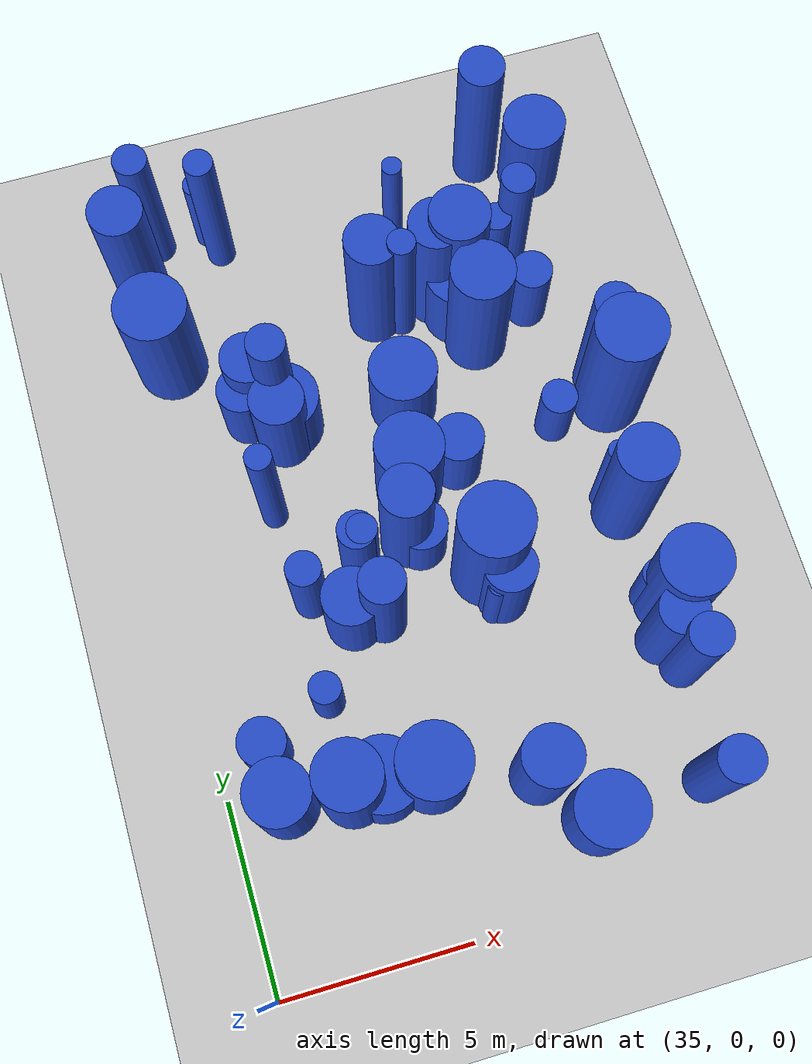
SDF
<sdf version="1.6">
 <world name="default">
  <model name="ground_plane">
   <static>1</static>
   <link name="link">
    <collision name="collision">
     <geometry><plane><normal>0 0 1</normal><size>100 100</size></plane></geometry>
     <surface><friction><ode><mu>100</mu><mu2>50</mu2></ode></friction></surface>
    </collision>
    <visual name="visual">
     <cast_shadows>0</cast_shadows>
     <geometry><plane><normal>0 0 1</normal><size>100 100</size></plane></geometry>
     <material>
      <script><uri>file://media/materials/scripts/gazebo.material</uri><name>Gazebo/Grey</name></script>
     </material>
    </visual>
   </link>
  </model>
  <model name="10">
   <static>0</static>
   <link name="link">
    <inertial>
     <mass>2</mass>
     <inertia><ixx>3.95554</ixx><ixy>0</ixy><ixz>0</ixz><iyy>3.95554</iyy><iyz>0</iyz><izz>0.519828</izz></inertia>
    </inertial>
    <collision name="collision">
     <geometry><cylinder><length>4.7089</length><radius>0.720991</radius></cylinder></geometry>
     <surface><contact><collide_without_contact>1</collide_without_contact></contact></surface>
    </collision>
    <visual name="visual">
     <geometry><cylinder><length>4.7089</length><radius>0.720991</radius></cylinder></geometry>
     <material>
      <script><uri>file://media/materials/scripts/gazebo.material</uri><name>Gazebo/Blue</name></script>
     </material>
    </visual>
    <gravity>0</gravity>
   </link>
   <pose>42.2217 16.8427 2.35445 0 -0 0</pose>
  </model>
  <model name="18">
   <static>0</static>
   <link name="link">
    <inertial>
     <mass>2</mass>
     <inertia><ixx>4.07132</ixx><ixy>0</ixy><ixz>0</ixz><iyy>4.07132</iyy><iyz>0</iyz><izz>0.25791</izz></inertia>
    </inertial>
    <collision name="collision">
     <geometry><cylinder><length>4.86356</length><radius>0.507848</radius></cylinder></geometry>
     <surface><contact><collide_without_contact>1</collide_without_contact></contact></surface>
    </collision>
    <visual name="visual">
     <geometry><cylinder><length>4.86356</length><radius>0.507848</radius></cylinder></geometry>
     <material>
      <script><uri>file://media/materials/scripts/gazebo.material</uri><name>Gazebo/Blue</name></script>
     </material>
    </visual>
    <gravity>0</gravity>
   </link>
   <pose>38.9741 14.813 2.43178 0 -0 0</pose>
  </model>
  <model name="20">
   <static>0</static>
   <link name="link">
    <inertial>
     <mass>2</mass>
     <inertia><ixx>4.13593</ixx><ixy>0</ixy><ixz>0</ixz><iyy>4.13593</iyy><iyz>0</iyz><izz>0.377057</izz></inertia>
    </inertial>
    <collision name="collision">
     <geometry><cylinder><length>4.86666</length><radius>0.614049</radius></cylinder></geometry>
     <surface><contact><collide_without_contact>1</collide_without_contact></contact></surface>
    </collision>
    <visual name="visual">
     <geometry><cylinder><length>4.86666</length><radius>0.614049</radius></cylinder></geometry>
     <material>
      <script><uri>file://media/materials/scripts/gazebo.material</uri><name>Gazebo/Blue</name></script>
     </material>
    </visual>
    <gravity>0</gravity>
   </link>
   <pose>46.3124 20.7601 2.43333 0 -0 0</pose>
  </model>
  <model name="54">
   <static>0</static>
   <link name="link">
    <inertial>
     <mass>2</mass>
     <inertia><ixx>3.78955</ixx><ixy>0</ixy><ixz>0</ixz><iyy>3.78955</iyy><iyz>0</iyz><izz>0.716468</izz></inertia>
    </inertial>
    <collision name="collision">
     <geometry><cylinder><length>4.53739</length><radius>0.846444</radius></cylinder></geometry>
     <surface><contact><collide_without_contact>1</collide_without_contact></contact></surface>
    </collision>
    <visual name="visual">
     <geometry><cylinder><length>4.53739</length><radius>0.846444</radius></cylinder></geometry>
     <material>
      <script><uri>file://media/materials/scripts/gazebo.material</uri><name>Gazebo/Blue</name></script>
     </material>
    </visual>
    <gravity>0</gravity>
   </link>
   <pose>38.1122 4.28516 2.26869 0 -0 0</pose>
  </model>
  <model name="68">
   <static>0</static>
   <link name="link">
    <inertial>
     <mass>2</mass>
     <inertia><ixx>3.67869</ixx><ixy>0</ixy><ixz>0</ixz><iyy>3.67869</iyy><iyz>0</iyz><izz>0.545919</izz></inertia>
    </inertial>
    <collision name="collision">
     <geometry><cylinder><length>4.52044</length><radius>0.738864</radius></cylinder></geometry>
     <surface><contact><collide_without_contact>1</collide_without_contact></contact></surface>
    </collision>
    <visual name="visual">
     <geometry><cylinder><length>4.52044</length><radius>0.738864</radius></cylinder></geometry>
     <material>
      <script><uri>file://media/materials/scripts/gazebo.material</uri><name>Gazebo/Blue</name></script>
     </material>
    </visual>
    <gravity>0</gravity>
   </link>
   <pose>43.9539 16.9312 2.26022 0 -0 0</pose>
  </model>
  <model name="72">
   <static>0</static>
   <link name="link">
    <inertial>
     <mass>2</mass>
     <inertia>
      <ixx>4.09435</ixx>
      <ixy>0</ixy>
      <ixz>0</ixz>
      <iyy>4.09435</iyy>
      <iyz>0</iyz>
      <izz>0.0686936</izz>
     </inertia>
    </inertial>
    <collision name="collision">
     <geometry><cylinder><length>4.93559</length><radius>0.262095</radius></cylinder></geometry>
     <surface><contact><collide_without_contact>1</collide_without_contact></contact></surface>
    </collision>
    <visual name="visual">
     <geometry><cylinder><length>4.93559</length><radius>0.262095</radius></cylinder></geometry>
     <material>
      <script><uri>file://media/materials/scripts/gazebo.material</uri><name>Gazebo/Blue</name></script>
     </material>
    </visual>
    <gravity>0</gravity>
   </link>
   <pose>43.2507 18.5685 2.46779 0 -0 0</pose>
  </model>
  <model name="74">
   <static>0</static>
   <link name="link">
    <inertial>
     <mass>2</mass>
     <inertia><ixx>4.55226</ixx><ixy>0</ixy><ixz>0</ixz><iyy>4.55226</iyy><iyz>0</iyz><izz>0.905784</izz></inertia>
    </inertial>
    <collision name="collision">
     <geometry><cylinder><length>4.95946</length><radius>0.951727</radius></cylinder></geometry>
     <surface><contact><collide_without_contact>1</collide_without_contact></contact></surface>
    </collision>
    <visual name="visual">
     <geometry><cylinder><length>4.95946</length><radius>0.951727</radius></cylinder></geometry>
     <material>
      <script><uri>file://media/materials/scripts/gazebo.material</uri><name>Gazebo/Blue</name></script>
     </material>
    </visual>
    <gravity>0</gravity>
   </link>
   <pose>43.0457 8.93679 2.47973 0 -0 0</pose>
  </model>
  <model name="75">
   <static>0</static>
   <link name="link">
    <inertial>
     <mass>2</mass>
     <inertia><ixx>0.9445</ixx><ixy>0</ixy><ixz>0</ixz><iyy>0.9445</iyy><iyz>0</iyz><izz>0.472755</izz></inertia>
    </inertial>
    <collision name="collision">
     <geometry><cylinder><length>2.06125</length><radius>0.687572</radius></cylinder></geometry>
     <surface><contact><collide_without_contact>1</collide_without_contact></contact></surface>
    </collision>
    <visual name="visual">
     <geometry><cylinder><length>2.06125</length><radius>0.687572</radius></cylinder></geometry>
     <material>
      <script><uri>file://media/materials/scripts/gazebo.material</uri><name>Gazebo/Blue</name></script>
     </material>
    </visual>
    <gravity>0</gravity>
   </link>
   <pose>41.5858 10.1246 1.03062 0 -0 0</pose>
  </model>
  <model name="80">
   <static>0</static>
   <link name="link">
    <inertial>
     <mass>2</mass>
     <inertia><ixx>1.55271</ixx><ixy>0</ixy><ixz>0</ixz><iyy>1.55271</iyy><iyz>0</iyz><izz>0.739705</izz></inertia>
    </inertial>
    <collision name="collision">
     <geometry><cylinder><length>2.66405</length><radius>0.860061</radius></cylinder></geometry>
     <surface><contact><collide_without_contact>1</collide_without_contact></contact></surface>
    </collision>
    <visual name="visual">
     <geometry><cylinder><length>2.66405</length><radius>0.860061</radius></cylinder></geometry>
     <material>
      <script><uri>file://media/materials/scripts/gazebo.material</uri><name>Gazebo/Blue</name></script>
     </material>
    </visual>
    <gravity>0</gravity>
   </link>
   <pose>47.7162 20.0833 1.33202 0 -0 0</pose>
  </model>
  <model name="93">
   <static>0</static>
   <link name="link">
    <inertial>
     <mass>2</mass>
     <inertia><ixx>1.83775</ixx><ixy>0</ixy><ixz>0</ixz><iyy>1.83775</iyy><iyz>0</iyz><izz>0.573765</izz></inertia>
    </inertial>
    <collision name="collision">
     <geometry><cylinder><length>3.05045</length><radius>0.757473</radius></cylinder></geometry>
     <surface><contact><collide_without_contact>1</collide_without_contact></contact></surface>
    </collision>
    <visual name="visual">
     <geometry><cylinder><length>3.05045</length><radius>0.757473</radius></cylinder></geometry>
     <material>
      <script><uri>file://media/materials/scripts/gazebo.material</uri><name>Gazebo/Blue</name></script>
     </material>
    </visual>
    <gravity>0</gravity>
   </link>
   <pose>39.3373 8.57951 1.52522 0 -0 0</pose>
  </model>
  <model name="96">
   <static>0</static>
   <link name="link">
    <inertial>
     <mass>2</mass>
     <inertia><ixx>1.17514</ixx><ixy>0</ixy><ixz>0</ixz><iyy>1.17514</iyy><iyz>0</iyz><izz>0.419325</izz></inertia>
    </inertial>
    <collision name="collision">
     <geometry><cylinder><length>2.40684</length><radius>0.647553</radius></cylinder></geometry>
     <surface><contact><collide_without_contact>1</collide_without_contact></contact></surface>
    </collision>
    <visual name="visual">
     <geometry><cylinder><length>2.40684</length><radius>0.647553</radius></cylinder></geometry>
     <material>
      <script><uri>file://media/materials/scripts/gazebo.material</uri><name>Gazebo/Blue</name></script>
     </material>
    </visual>
    <gravity>0</gravity>
   </link>
   <pose>38.0768 14.8261 1.20342 0 -0 0</pose>
  </model>
  <model name="98">
   <static>0</static>
   <link name="link">
    <inertial>
     <mass>2</mass>
     <inertia><ixx>0.99824</ixx><ixy>0</ixy><ixz>0</ixz><iyy>0.99824</iyy><iyz>0</iyz><izz>0.190361</izz></inertia>
    </inertial>
    <collision name="collision">
     <geometry><cylinder><length>2.32774</length><radius>0.436304</radius></cylinder></geometry>
     <surface><contact><collide_without_contact>1</collide_without_contact></contact></surface>
    </collision>
    <visual name="visual">
     <geometry><cylinder><length>2.32774</length><radius>0.436304</radius></cylinder></geometry>
     <material>
      <script><uri>file://media/materials/scripts/gazebo.material</uri><name>Gazebo/Blue</name></script>
     </material>
    </visual>
    <gravity>0</gravity>
   </link>
   <pose>46.9036 7.13651 1.16387 0 -0 0</pose>
  </model>
  <model name="113">
   <static>0</static>
   <link name="link">
    <inertial>
     <mass>2</mass>
     <inertia><ixx>2.38926</ixx><ixy>0</ixy><ixz>0</ixz><iyy>2.38926</iyy><iyz>0</iyz><izz>0.902672</izz></inertia>
    </inertial>
    <collision name="collision">
     <geometry><cylinder><length>3.40992</length><radius>0.95009</radius></cylinder></geometry>
     <surface><contact><collide_without_contact>1</collide_without_contact></contact></surface>
    </collision>
    <visual name="visual">
     <geometry><cylinder><length>3.40992</length><radius>0.95009</radius></cylinder></geometry>
     <material>
      <script><uri>file://media/materials/scripts/gazebo.material</uri><name>Gazebo/Blue</name></script>
     </material>
    </visual>
    <gravity>0</gravity>
   </link>
   <pose>40.1435 4.17281 1.70496 0 -0 0</pose>
  </model>
  <model name="114">
   <static>0</static>
   <link name="link">
    <inertial>
     <mass>2</mass>
     <inertia><ixx>2.1935</ixx><ixy>0</ixy><ixz>0</ixz><iyy>2.1935</iyy><iyz>0</iyz><izz>0.462287</izz></inertia>
    </inertial>
    <collision name="collision">
     <geometry><cylinder><length>3.43134</length><radius>0.679917</radius></cylinder></geometry>
     <surface><contact><collide_without_contact>1</collide_without_contact></contact></surface>
    </collision>
    <visual name="visual">
     <geometry><cylinder><length>3.43134</length><radius>0.679917</radius></cylinder></geometry>
     <material>
      <script><uri>file://media/materials/scripts/gazebo.material</uri><name>Gazebo/Blue</name></script>
     </material>
    </visual>
    <gravity>0</gravity>
   </link>
   <pose>43.25 8.131 1.71567 0 -0 0</pose>
  </model>
  <model name="115">
   <static>0</static>
   <link name="link">
    <inertial>
     <mass>2</mass>
     <inertia><ixx>3.41373</ixx><ixy>0</ixy><ixz>0</ixz><iyy>3.41373</iyy><iyz>0</iyz><izz>0.343115</izz></inertia>
    </inertial>
    <collision name="collision">
     <geometry><cylinder><length>4.41056</length><radius>0.58576</radius></cylinder></geometry>
     <surface><contact><collide_without_contact>1</collide_without_contact></contact></surface>
    </collision>
    <visual name="visual">
     <geometry><cylinder><length>4.41056</length><radius>0.58576</radius></cylinder></geometry>
     <material>
      <script><uri>file://media/materials/scripts/gazebo.material</uri><name>Gazebo/Blue</name></script>
     </material>
    </visual>
    <gravity>0</gravity>
   </link>
   <pose>40.0961 8.40578 2.20528 0 -0 0</pose>
  </model>
  <model name="123">
   <static>0</static>
   <link name="link">
    <inertial>
     <mass>2</mass>
     <inertia><ixx>4.17163</ixx><ixy>0</ixy><ixz>0</ixz><iyy>4.17163</iyy><iyz>0</iyz><izz>0.152113</izz></inertia>
    </inertial>
    <collision name="collision">
     <geometry><cylinder><length>4.95716</length><radius>0.390016</radius></cylinder></geometry>
     <surface><contact><collide_without_contact>1</collide_without_contact></contact></surface>
    </collision>
    <visual name="visual">
     <geometry><cylinder><length>4.95716</length><radius>0.390016</radius></cylinder></geometry>
     <material>
      <script><uri>file://media/materials/scripts/gazebo.material</uri><name>Gazebo/Blue</name></script>
     </material>
    </visual>
    <gravity>0</gravity>
   </link>
   <pose>38.5687 20.004 2.47858 0 -0 0</pose>
  </model>
  <model name="140">
   <static>0</static>
   <link name="link">
    <inertial>
     <mass>2</mass>
     <inertia>
      <ixx>2.53092</ixx>
      <ixy>0</ixy>
      <ixz>0</ixz>
      <iyy>2.53092</iyy>
      <iyz>0</iyz>
      <izz>0.0802251</izz>
     </inertia>
    </inertial>
    <collision name="collision">
     <geometry><cylinder><length>3.86586</length><radius>0.28324</radius></cylinder></geometry>
     <surface><contact><collide_without_contact>1</collide_without_contact></contact></surface>
    </collision>
    <visual name="visual">
     <geometry><cylinder><length>3.86586</length><radius>0.28324</radius></cylinder></geometry>
     <material>
      <script><uri>file://media/materials/scripts/gazebo.material</uri><name>Gazebo/Blue</name></script>
     </material>
    </visual>
    <gravity>0</gravity>
   </link>
   <pose>46.6044 10.0674 1.93293 0 -0 0</pose>
  </model>
  <model name="142">
   <static>0</static>
   <link name="link">
    <inertial>
     <mass>2</mass>
     <inertia><ixx>1.31599</ixx><ixy>0</ixy><ixz>0</ixz><iyy>1.31599</iyy><iyz>0</iyz><izz>0.910445</izz></inertia>
    </inertial>
    <collision name="collision">
     <geometry><cylinder><length>2.27258</length><radius>0.954172</radius></cylinder></geometry>
     <surface><contact><collide_without_contact>1</collide_without_contact></contact></surface>
    </collision>
    <visual name="visual">
     <geometry><cylinder><length>2.27258</length><radius>0.954172</radius></cylinder></geometry>
     <material>
      <script><uri>file://media/materials/scripts/gazebo.material</uri><name>Gazebo/Blue</name></script>
     </material>
    </visual>
    <gravity>0</gravity>
   </link>
   <pose>39.0696 14.3892 1.13629 0 -0 0</pose>
  </model>
  <model name="145">
   <static>0</static>
   <link name="link">
    <inertial>
     <mass>2</mass>
     <inertia>
      <ixx>0.900555</ixx>
      <ixy>0</ixy>
      <ixz>0</ixz>
      <iyy>0.900555</iyy>
      <iyz>0</iyz>
      <izz>0.175606</izz>
     </inertia>
    </inertial>
    <collision name="collision">
     <geometry><cylinder><length>2.20828</length><radius>0.419053</radius></cylinder></geometry>
     <surface><contact><collide_without_contact>1</collide_without_contact></contact></surface>
    </collision>
    <visual name="visual">
     <geometry><cylinder><length>2.20828</length><radius>0.419053</radius></cylinder></geometry>
     <material>
      <script><uri>file://media/materials/scripts/gazebo.material</uri><name>Gazebo/Blue</name></script>
     </material>
    </visual>
    <gravity>0</gravity>
   </link>
   <pose>38.1286 6.74492 1.10414 0 -0 0</pose>
  </model>
  <model name="153">
   <static>0</static>
   <link name="link">
    <inertial>
     <mass>2</mass>
     <inertia><ixx>3.3934</ixx><ixy>0</ixy><ixz>0</ixz><iyy>3.3934</iyy><iyz>0</iyz><izz>0.0812406</izz></inertia>
    </inertial>
    <collision name="collision">
     <geometry><cylinder><length>4.48516</length><radius>0.285027</radius></cylinder></geometry>
     <surface><contact><collide_without_contact>1</collide_without_contact></contact></surface>
    </collision>
    <visual name="visual">
     <geometry><cylinder><length>4.48516</length><radius>0.285027</radius></cylinder></geometry>
     <material>
      <script><uri>file://media/materials/scripts/gazebo.material</uri><name>Gazebo/Blue</name></script>
     </material>
    </visual>
    <gravity>0</gravity>
   </link>
   <pose>44.6342 17.2397 2.24258 0 -0 0</pose>
  </model>
  <model name="173">
   <static>0</static>
   <link name="link">
    <inertial>
     <mass>2</mass>
     <inertia><ixx>1.1987</ixx><ixy>0</ixy><ixz>0</ixz><iyy>1.1987</iyy><iyz>0</iyz><izz>0.436702</izz></inertia>
    </inertial>
    <collision name="collision">
     <geometry><cylinder><length>2.4253</length><radius>0.660834</radius></cylinder></geometry>
     <surface><contact><collide_without_contact>1</collide_without_contact></contact></surface>
    </collision>
    <visual name="visual">
     <geometry><cylinder><length>2.4253</length><radius>0.660834</radius></cylinder></geometry>
     <material>
      <script><uri>file://media/materials/scripts/gazebo.material</uri><name>Gazebo/Blue</name></script>
     </material>
    </visual>
    <gravity>0</gravity>
   </link>
   <pose>43.1344 11.9873 1.21265 0 -0 0</pose>
  </model>
  <model name="177">
   <static>0</static>
   <link name="link">
    <inertial>
     <mass>2</mass>
     <inertia><ixx>1.93866</ixx><ixy>0</ixy><ixz>0</ixz><iyy>1.93866</iyy><iyz>0</iyz><izz>0.498334</izz></inertia>
    </inertial>
    <collision name="collision">
     <geometry><cylinder><length>3.18386</length><radius>0.705928</radius></cylinder></geometry>
     <surface><contact><collide_without_contact>1</collide_without_contact></contact></surface>
    </collision>
    <visual name="visual">
     <geometry><cylinder><length>3.18386</length><radius>0.705928</radius></cylinder></geometry>
     <material>
      <script><uri>file://media/materials/scripts/gazebo.material</uri><name>Gazebo/Blue</name></script>
     </material>
    </visual>
    <gravity>0</gravity>
   </link>
   <pose>38.4389 15.3047 1.59193 0 -0 0</pose>
  </model>
  <model name="199">
   <static>0</static>
   <link name="link">
    <inertial>
     <mass>2</mass>
     <inertia><ixx>3.97337</ixx><ixy>0</ixy><ixz>0</ixz><iyy>3.97337</iyy><iyz>0</iyz><izz>0.118229</izz></inertia>
    </inertial>
    <collision name="collision">
     <geometry><cylinder><length>4.84619</length><radius>0.343845</radius></cylinder></geometry>
     <surface><contact><collide_without_contact>1</collide_without_contact></contact></surface>
    </collision>
    <visual name="visual">
     <geometry><cylinder><length>4.84619</length><radius>0.343845</radius></cylinder></geometry>
     <material>
      <script><uri>file://media/materials/scripts/gazebo.material</uri><name>Gazebo/Blue</name></script>
     </material>
    </visual>
    <gravity>0</gravity>
   </link>
   <pose>38.0664 12.0133 2.42309 0 -0 0</pose>
  </model>
  <model name="214">
   <static>0</static>
   <link name="link">
    <inertial>
     <mass>2</mass>
     <inertia><ixx>1.55721</ixx><ixy>0</ixy><ixz>0</ixz><iyy>1.55721</iyy><iyz>0</iyz><izz>0.920987</izz></inertia>
    </inertial>
    <collision name="collision">
     <geometry><cylinder><length>2.56521</length><radius>0.959681</radius></cylinder></geometry>
     <surface><contact><collide_without_contact>1</collide_without_contact></contact></surface>
    </collision>
    <visual name="visual">
     <geometry><cylinder><length>2.56521</length><radius>0.959681</radius></cylinder></geometry>
     <material>
      <script><uri>file://media/materials/scripts/gazebo.material</uri><name>Gazebo/Blue</name></script>
     </material>
    </visual>
    <gravity>0</gravity>
   </link>
   <pose>38.9179 4.29523 1.2826 0 -0 0</pose>
  </model>
  <model name="215">
   <static>0</static>
   <link name="link">
    <inertial>
     <mass>2</mass>
     <inertia><ixx>3.02705</ixx><ixy>0</ixy><ixz>0</ixz><iyy>3.02705</iyy><iyz>0</iyz><izz>0.565565</izz></inertia>
    </inertial>
    <collision name="collision">
     <geometry><cylinder><length>4.05778</length><radius>0.752041</radius></cylinder></geometry>
     <surface><contact><collide_without_contact>1</collide_without_contact></contact></surface>
    </collision>
    <visual name="visual">
     <geometry><cylinder><length>4.05778</length><radius>0.752041</radius></cylinder></geometry>
     <material>
      <script><uri>file://media/materials/scripts/gazebo.material</uri><name>Gazebo/Blue</name></script>
     </material>
    </visual>
    <gravity>0</gravity>
   </link>
   <pose>42.7429 3.44453 2.02889 0 -0 0</pose>
  </model>
  <model name="252">
   <static>0</static>
   <link name="link">
    <inertial>
     <mass>2</mass>
     <inertia><ixx>4.13626</ixx><ixy>0</ixy><ixz>0</ixz><iyy>4.13626</iyy><iyz>0</iyz><izz>0.642217</izz></inertia>
    </inertial>
    <collision name="collision">
     <geometry><cylinder><length>4.78444</length><radius>0.801384</radius></cylinder></geometry>
     <surface><contact><collide_without_contact>1</collide_without_contact></contact></surface>
    </collision>
    <visual name="visual">
     <geometry><cylinder><length>4.78444</length><radius>0.801384</radius></cylinder></geometry>
     <material>
      <script><uri>file://media/materials/scripts/gazebo.material</uri><name>Gazebo/Blue</name></script>
     </material>
    </visual>
    <gravity>0</gravity>
   </link>
   <pose>44.5525 16.9086 2.39222 0 -0 0</pose>
  </model>
  <model name="256">
   <static>0</static>
   <link name="link">
    <inertial>
     <mass>2</mass>
     <inertia><ixx>2.06482</ixx><ixy>0</ixy><ixz>0</ixz><iyy>2.06482</iyy><iyz>0</iyz><izz>0.522754</izz></inertia>
    </inertial>
    <collision name="collision">
     <geometry><cylinder><length>3.28948</length><radius>0.723017</radius></cylinder></geometry>
     <surface><contact><collide_without_contact>1</collide_without_contact></contact></surface>
    </collision>
    <visual name="visual">
     <geometry><cylinder><length>3.28948</length><radius>0.723017</radius></cylinder></geometry>
     <material>
      <script><uri>file://media/materials/scripts/gazebo.material</uri><name>Gazebo/Blue</name></script>
     </material>
    </visual>
    <gravity>0</gravity>
   </link>
   <pose>38.8785 13.9623 1.64474 0 -0 0</pose>
  </model>
  <model name="258">
   <static>0</static>
   <link name="link">
    <inertial>
     <mass>2</mass>
     <inertia><ixx>3.74265</ixx><ixy>0</ixy><ixz>0</ixz><iyy>3.74265</iyy><iyz>0</iyz><izz>0.708244</izz></inertia>
    </inertial>
    <collision name="collision">
     <geometry><cylinder><length>4.50901</length><radius>0.841572</radius></cylinder></geometry>
     <surface><contact><collide_without_contact>1</collide_without_contact></contact></surface>
    </collision>
    <visual name="visual">
     <geometry><cylinder><length>4.50901</length><radius>0.841572</radius></cylinder></geometry>
     <material>
      <script><uri>file://media/materials/scripts/gazebo.material</uri><name>Gazebo/Blue</name></script>
     </material>
    </visual>
    <gravity>0</gravity>
   </link>
   <pose>44.7103 15.3645 2.2545 0 -0 0</pose>
  </model>
  <model name="262">
   <static>0</static>
   <link name="link">
    <inertial>
     <mass>2</mass>
     <inertia><ixx>2.20714</ixx><ixy>0</ixy><ixz>0</ixz><iyy>2.20714</iyy><iyz>0</iyz><izz>0.703453</izz></inertia>
    </inertial>
    <collision name="collision">
     <geometry><cylinder><length>3.33654</length><radius>0.838721</radius></cylinder></geometry>
     <surface><contact><collide_without_contact>1</collide_without_contact></contact></surface>
    </collision>
    <visual name="visual">
     <geometry><cylinder><length>3.33654</length><radius>0.838721</radius></cylinder></geometry>
     <material>
      <script><uri>file://media/materials/scripts/gazebo.material</uri><name>Gazebo/Blue</name></script>
     </material>
    </visual>
    <gravity>0</gravity>
   </link>
   <pose>36.4236 4.49701 1.66827 0 -0 0</pose>
  </model>
  <model name="264">
   <static>0</static>
   <link name="link">
    <inertial>
     <mass>2</mass>
     <inertia><ixx>2.59519</ixx><ixy>0</ixy><ixz>0</ixz><iyy>2.59519</iyy><iyz>0</iyz><izz>0.407277</izz></inertia>
    </inertial>
    <collision name="collision">
     <geometry><cylinder><length>3.78805</length><radius>0.638182</radius></cylinder></geometry>
     <surface><contact><collide_without_contact>1</collide_without_contact></contact></surface>
    </collision>
    <visual name="visual">
     <geometry><cylinder><length>3.78805</length><radius>0.638182</radius></cylinder></geometry>
     <material>
      <script><uri>file://media/materials/scripts/gazebo.material</uri><name>Gazebo/Blue</name></script>
     </material>
    </visual>
    <gravity>0</gravity>
   </link>
   <pose>46.844 5.88851 1.89402 0 -0 0</pose>
  </model>
  <model name="277">
   <static>0</static>
   <link name="link">
    <inertial>
     <mass>2</mass>
     <inertia><ixx>1.75897</ixx><ixy>0</ixy><ixz>0</ixz><iyy>1.75897</iyy><iyz>0</iyz><izz>0.867587</izz></inertia>
    </inertial>
    <collision name="collision">
     <geometry><cylinder><length>2.81976</length><radius>0.931444</radius></cylinder></geometry>
     <surface><contact><collide_without_contact>1</collide_without_contact></contact></surface>
    </collision>
    <visual name="visual">
     <geometry><cylinder><length>2.81976</length><radius>0.931444</radius></cylinder></geometry>
     <material>
      <script><uri>file://media/materials/scripts/gazebo.material</uri><name>Gazebo/Blue</name></script>
     </material>
    </visual>
    <gravity>0</gravity>
   </link>
   <pose>43.8668 2.00101 1.40988 0 -0 0</pose>
  </model>
  <model name="287">
   <static>0</static>
   <link name="link">
    <inertial>
     <mass>2</mass>
     <inertia><ixx>4.12317</ixx><ixy>0</ixy><ixz>0</ixz><iyy>4.12317</iyy><iyz>0</iyz><izz>0.312009</izz></inertia>
    </inertial>
    <collision name="collision">
     <geometry><cylinder><length>4.87883</length><radius>0.558578</radius></cylinder></geometry>
     <surface><contact><collide_without_contact>1</collide_without_contact></contact></surface>
    </collision>
    <visual name="visual">
     <geometry><cylinder><length>4.87883</length><radius>0.558578</radius></cylinder></geometry>
     <material>
      <script><uri>file://media/materials/scripts/gazebo.material</uri><name>Gazebo/Blue</name></script>
     </material>
    </visual>
    <gravity>0</gravity>
   </link>
   <pose>47.523 13.4384 2.43942 0 -0 0</pose>
  </model>
  <model name="295">
   <static>0</static>
   <link name="link">
    <inertial>
     <mass>2</mass>
     <inertia><ixx>1.43717</ixx><ixy>0</ixy><ixz>0</ixz><iyy>1.43717</iyy><iyz>0</iyz><izz>0.110552</izz></inertia>
    </inertial>
    <collision name="collision">
     <geometry><cylinder><length>2.87947</length><radius>0.332494</radius></cylinder></geometry>
     <surface><contact><collide_without_contact>1</collide_without_contact></contact></surface>
    </collision>
    <visual name="visual">
     <geometry><cylinder><length>2.87947</length><radius>0.332494</radius></cylinder></geometry>
     <material>
      <script><uri>file://media/materials/scripts/gazebo.material</uri><name>Gazebo/Blue</name></script>
     </material>
    </visual>
    <gravity>0</gravity>
   </link>
   <pose>38.3444 20.6591 1.43973 0 -0 0</pose>
  </model>
  <model name="300">
   <static>0</static>
   <link name="link">
    <inertial>
     <mass>2</mass>
     <inertia><ixx>4.38532</ixx><ixy>0</ixy><ixz>0</ixz><iyy>4.38532</iyy><iyz>0</iyz><izz>0.511151</izz></inertia>
    </inertial>
    <collision name="collision">
     <geometry><cylinder><length>4.9778</length><radius>0.714948</radius></cylinder></geometry>
     <surface><contact><collide_without_contact>1</collide_without_contact></contact></surface>
    </collision>
    <visual name="visual">
     <geometry><cylinder><length>4.9778</length><radius>0.714948</radius></cylinder></geometry>
     <material>
      <script><uri>file://media/materials/scripts/gazebo.material</uri><name>Gazebo/Blue</name></script>
     </material>
    </visual>
    <gravity>0</gravity>
   </link>
   <pose>36.2529 19.2581 2.4889 0 -0 0</pose>
  </model>
  <model name="302">
   <static>0</static>
   <link name="link">
    <inertial>
     <mass>2</mass>
     <inertia><ixx>2.13886</ixx><ixy>0</ixy><ixz>0</ixz><iyy>2.13886</iyy><iyz>0</iyz><izz>0.208657</izz></inertia>
    </inertial>
    <collision name="collision">
     <geometry><cylinder><length>3.49388</length><radius>0.45679</radius></cylinder></geometry>
     <surface><contact><collide_without_contact>1</collide_without_contact></contact></surface>
    </collision>
    <visual name="visual">
     <geometry><cylinder><length>3.49388</length><radius>0.45679</radius></cylinder></geometry>
     <material>
      <script><uri>file://media/materials/scripts/gazebo.material</uri><name>Gazebo/Blue</name></script>
     </material>
    </visual>
    <gravity>0</gravity>
   </link>
   <pose>38.3913 9.44573 1.74694 0 -0 0</pose>
  </model>
  <model name="309">
   <static>0</static>
   <link name="link">
    <inertial>
     <mass>2</mass>
     <inertia><ixx>1.95986</ixx><ixy>0</ixy><ixz>0</ixz><iyy>1.95986</iyy><iyz>0</iyz><izz>0.162491</izz></inertia>
    </inertial>
    <collision name="collision">
     <geometry><cylinder><length>3.35734</length><radius>0.403102</radius></cylinder></geometry>
     <surface><contact><collide_without_contact>1</collide_without_contact></contact></surface>
    </collision>
    <visual name="visual">
     <geometry><cylinder><length>3.35734</length><radius>0.403102</radius></cylinder></geometry>
     <material>
      <script><uri>file://media/materials/scripts/gazebo.material</uri><name>Gazebo/Blue</name></script>
     </material>
    </visual>
    <gravity>0</gravity>
   </link>
   <pose>45.7187 17.2655 1.67867 0 -0 0</pose>
  </model>
  <model name="321">
   <static>0</static>
   <link name="link">
    <inertial>
     <mass>2</mass>
     <inertia><ixx>3.36751</ixx><ixy>0</ixy><ixz>0</ixz><iyy>3.36751</iyy><iyz>0</iyz><izz>0.327672</izz></inertia>
    </inertial>
    <collision name="collision">
     <geometry><cylinder><length>4.3843</length><radius>0.572427</radius></cylinder></geometry>
     <surface><contact><collide_without_contact>1</collide_without_contact></contact></surface>
    </collision>
    <visual name="visual">
     <geometry><cylinder><length>4.3843</length><radius>0.572427</radius></cylinder></geometry>
     <material>
      <script><uri>file://media/materials/scripts/gazebo.material</uri><name>Gazebo/Blue</name></script>
     </material>
    </visual>
    <gravity>0</gravity>
   </link>
   <pose>46.7721 2.15533 2.19215 0 -0 0</pose>
  </model>
  <model name="333">
   <static>0</static>
   <link name="link">
    <inertial>
     <mass>2</mass>
     <inertia>
      <ixx>1.61228</ixx>
      <ixy>0</ixy>
      <ixz>0</ixz>
      <iyy>1.61228</iyy>
      <iyz>0</iyz>
      <izz>0.0807318</izz>
     </inertia>
    </inertial>
    <collision name="collision">
     <geometry><cylinder><length>3.07107</length><radius>0.284133</radius></cylinder></geometry>
     <surface><contact><collide_without_contact>1</collide_without_contact></contact></surface>
    </collision>
    <visual name="visual">
     <geometry><cylinder><length>3.07107</length><radius>0.284133</radius></cylinder></geometry>
     <material>
      <script><uri>file://media/materials/scripts/gazebo.material</uri><name>Gazebo/Blue</name></script>
     </material>
    </visual>
    <gravity>0</gravity>
   </link>
   <pose>42.8895 7.83059 1.53553 0 -0 0</pose>
  </model>
  <model name="347">
   <static>0</static>
   <link name="link">
    <inertial>
     <mass>2</mass>
     <inertia><ixx>3.15302</ixx><ixy>0</ixy><ixz>0</ixz><iyy>3.15302</iyy><iyz>0</iyz><izz>0.914635</izz></inertia>
    </inertial>
    <collision name="collision">
     <geometry><cylinder><length>4.02172</length><radius>0.956366</radius></cylinder></geometry>
     <surface><contact><collide_without_contact>1</collide_without_contact></contact></surface>
    </collision>
    <visual name="visual">
     <geometry><cylinder><length>4.02172</length><radius>0.956366</radius></cylinder></geometry>
     <material>
      <script><uri>file://media/materials/scripts/gazebo.material</uri><name>Gazebo/Blue</name></script>
     </material>
    </visual>
    <gravity>0</gravity>
   </link>
   <pose>36.4393 16.9624 2.01086 0 -0 0</pose>
  </model>
  <model name="348">
   <static>0</static>
   <link name="link">
    <inertial>
     <mass>2</mass>
     <inertia><ixx>3.80297</ixx><ixy>0</ixy><ixz>0</ixz><iyy>3.80297</iyy><iyz>0</iyz><izz>0.478135</izz></inertia>
    </inertial>
    <collision name="collision">
     <geometry><cylinder><length>4.62422</length><radius>0.691473</radius></cylinder></geometry>
     <surface><contact><collide_without_contact>1</collide_without_contact></contact></surface>
    </collision>
    <visual name="visual">
     <geometry><cylinder><length>4.62422</length><radius>0.691473</radius></cylinder></geometry>
     <material>
      <script><uri>file://media/materials/scripts/gazebo.material</uri><name>Gazebo/Blue</name></script>
     </material>
    </visual>
    <gravity>0</gravity>
   </link>
   <pose>41.2459 10.302 2.31211 0 -0 0</pose>
  </model>
  <model name="351">
   <static>0</static>
   <link name="link">
    <inertial>
     <mass>2</mass>
     <inertia>
      <ixx>0.907643</ixx>
      <ixy>0</ixy>
      <ixz>0</ixz>
      <iyy>0.907643</iyy>
      <iyz>0</iyz>
      <izz>0.23029</izz>
     </inertia>
    </inertial>
    <collision name="collision">
     <geometry><cylinder><length>2.18059</length><radius>0.479885</radius></cylinder></geometry>
     <surface><contact><collide_without_contact>1</collide_without_contact></contact></surface>
    </collision>
    <visual name="visual">
     <geometry><cylinder><length>2.18059</length><radius>0.479885</radius></cylinder></geometry>
     <material>
      <script><uri>file://media/materials/scripts/gazebo.material</uri><name>Gazebo/Blue</name></script>
     </material>
    </visual>
    <gravity>0</gravity>
   </link>
   <pose>46.0057 12.4146 1.0903 0 -0 0</pose>
  </model>
  <model name="354">
   <static>0</static>
   <link name="link">
    <inertial>
     <mass>2</mass>
     <inertia><ixx>1.01075</ixx><ixy>0</ixy><ixz>0</ixz><iyy>1.01075</iyy><iyz>0</iyz><izz>0.384625</izz></inertia>
    </inertial>
    <collision name="collision">
     <geometry><cylinder><length>2.216</length><radius>0.620182</radius></cylinder></geometry>
     <surface><contact><collide_without_contact>1</collide_without_contact></contact></surface>
    </collision>
    <visual name="visual">
     <geometry><cylinder><length>2.216</length><radius>0.620182</radius></cylinder></geometry>
     <material>
      <script><uri>file://media/materials/scripts/gazebo.material</uri><name>Gazebo/Blue</name></script>
     </material>
    </visual>
    <gravity>0</gravity>
   </link>
   <pose>36.3117 5.90342 1.108 0 -0 0</pose>
  </model>
  <model name="356">
   <static>0</static>
   <link name="link">
    <inertial>
     <mass>2</mass>
     <inertia><ixx>4.44645</ixx><ixy>0</ixy><ixz>0</ixz><iyy>4.44645</iyy><iyz>0</iyz><izz>0.571988</izz></inertia>
    </inertial>
    <collision name="collision">
     <geometry><cylinder><length>4.99627</length><radius>0.756299</radius></cylinder></geometry>
     <surface><contact><collide_without_contact>1</collide_without_contact></contact></surface>
    </collision>
    <visual name="visual">
     <geometry><cylinder><length>4.99627</length><radius>0.756299</radius></cylinder></geometry>
     <material>
      <script><uri>file://media/materials/scripts/gazebo.material</uri><name>Gazebo/Blue</name></script>
     </material>
    </visual>
    <gravity>0</gravity>
   </link>
   <pose>46.9651 9.51225 2.49814 0 -0 0</pose>
  </model>
  <model name="377">
   <static>0</static>
   <link name="link">
    <inertial>
     <mass>2</mass>
     <inertia><ixx>2.42724</ixx><ixy>0</ixy><ixz>0</ixz><iyy>2.42724</iyy><iyz>0</iyz><izz>0.155304</izz></inertia>
    </inertial>
    <collision name="collision">
     <geometry><cylinder><length>3.75467</length><radius>0.394086</radius></cylinder></geometry>
     <surface><contact><collide_without_contact>1</collide_without_contact></contact></surface>
    </collision>
    <visual name="visual">
     <geometry><cylinder><length>3.75467</length><radius>0.394086</radius></cylinder></geometry>
     <material>
      <script><uri>file://media/materials/scripts/gazebo.material</uri><name>Gazebo/Blue</name></script>
     </material>
    </visual>
    <gravity>0</gravity>
   </link>
   <pose>40.0146 9.94794 1.87733 0 -0 0</pose>
  </model>
  <model name="378">
   <static>0</static>
   <link name="link">
    <inertial>
     <mass>2</mass>
     <inertia><ixx>1.17802</ixx><ixy>0</ixy><ixz>0</ixz><iyy>1.17802</iyy><iyz>0</iyz><izz>0.298349</izz></inertia>
    </inertial>
    <collision name="collision">
     <geometry><cylinder><length>2.48457</length><radius>0.546213</radius></cylinder></geometry>
     <surface><contact><collide_without_contact>1</collide_without_contact></contact></surface>
    </collision>
    <visual name="visual">
     <geometry><cylinder><length>2.48457</length><radius>0.546213</radius></cylinder></geometry>
     <material>
      <script><uri>file://media/materials/scripts/gazebo.material</uri><name>Gazebo/Blue</name></script>
     </material>
    </visual>
    <gravity>0</gravity>
   </link>
   <pose>46.3547 15.942 1.24228 0 -0 0</pose>
  </model>
  <model name="380">
   <static>0</static>
   <link name="link">
    <inertial>
     <mass>2</mass>
     <inertia><ixx>3.95422</ixx><ixy>0</ixy><ixz>0</ixz><iyy>3.95422</iyy><iyz>0</iyz><izz>0.205432</izz></inertia>
    </inertial>
    <collision name="collision">
     <geometry><cylinder><length>4.80719</length><radius>0.453247</radius></cylinder></geometry>
     <surface><contact><collide_without_contact>1</collide_without_contact></contact></surface>
    </collision>
    <visual name="visual">
     <geometry><cylinder><length>4.80719</length><radius>0.453247</radius></cylinder></geometry>
     <material>
      <script><uri>file://media/materials/scripts/gazebo.material</uri><name>Gazebo/Blue</name></script>
     </material>
    </visual>
    <gravity>0</gravity>
   </link>
   <pose>36.9172 20.6652 2.40359 0 -0 0</pose>
  </model>
  <model name="382">
   <static>0</static>
   <link name="link">
    <inertial>
     <mass>2</mass>
     <inertia><ixx>4.533</ixx><ixy>0</ixy><ixz>0</ixz><iyy>4.533</iyy><iyz>0</iyz><izz>0.871708</izz></inertia>
    </inertial>
    <collision name="collision">
     <geometry><cylinder><length>4.95811</length><radius>0.933653</radius></cylinder></geometry>
     <surface><contact><collide_without_contact>1</collide_without_contact></contact></surface>
    </collision>
    <visual name="visual">
     <geometry><cylinder><length>4.95811</length><radius>0.933653</radius></cylinder></geometry>
     <material>
      <script><uri>file://media/materials/scripts/gazebo.material</uri><name>Gazebo/Blue</name></script>
     </material>
    </visual>
    <gravity>0</gravity>
   </link>
   <pose>47.6556 12.6757 2.47905 0 -0 0</pose>
  </model>
  <model name="388">
   <static>0</static>
   <link name="link">
    <inertial>
     <mass>2</mass>
     <inertia><ixx>3.94892</ixx><ixy>0</ixy><ixz>0</ixz><iyy>3.94892</iyy><iyz>0</iyz><izz>0.13775</izz></inertia>
    </inertial>
    <collision name="collision">
     <geometry><cylinder><length>4.82497</length><radius>0.371146</radius></cylinder></geometry>
     <surface><contact><collide_without_contact>1</collide_without_contact></contact></surface>
    </collision>
    <visual name="visual">
     <geometry><cylinder><length>4.82497</length><radius>0.371146</radius></cylinder></geometry>
     <material>
      <script><uri>file://media/materials/scripts/gazebo.material</uri><name>Gazebo/Blue</name></script>
     </material>
    </visual>
    <gravity>0</gravity>
   </link>
   <pose>42.9093 16.5125 2.41248 0 -0 0</pose>
  </model>
  <model name="419">
   <static>0</static>
   <link name="link">
    <inertial>
     <mass>2</mass>
     <inertia><ixx>3.06393</ixx><ixy>0</ixy><ixz>0</ixz><iyy>3.06393</iyy><iyz>0</iyz><izz>0.298608</izz></inertia>
    </inertial>
    <collision name="collision">
     <geometry><cylinder><length>4.18184</length><radius>0.546451</radius></cylinder></geometry>
     <surface><contact><collide_without_contact>1</collide_without_contact></contact></surface>
    </collision>
    <visual name="visual">
     <geometry><cylinder><length>4.18184</length><radius>0.546451</radius></cylinder></geometry>
     <material>
      <script><uri>file://media/materials/scripts/gazebo.material</uri><name>Gazebo/Blue</name></script>
     </material>
    </visual>
    <gravity>0</gravity>
   </link>
   <pose>47.1445 5.08237 2.09092 0 -0 0</pose>
  </model>
  <model name="452">
   <static>0</static>
   <link name="link">
    <inertial>
     <mass>2</mass>
     <inertia><ixx>1.57503</ixx><ixy>0</ixy><ixz>0</ixz><iyy>1.57503</iyy><iyz>0</iyz><izz>0.876382</izz></inertia>
    </inertial>
    <collision name="collision">
     <geometry><cylinder><length>2.61172</length><radius>0.936153</radius></cylinder></geometry>
     <surface><contact><collide_without_contact>1</collide_without_contact></contact></surface>
    </collision>
    <visual name="visual">
     <geometry><cylinder><length>2.61172</length><radius>0.936153</radius></cylinder></geometry>
     <material>
      <script><uri>file://media/materials/scripts/gazebo.material</uri><name>Gazebo/Blue</name></script>
     </material>
    </visual>
    <gravity>0</gravity>
   </link>
   <pose>44.4663 16.3469 1.30586 0 -0 0</pose>
  </model>
  <model name="463">
   <static>0</static>
   <link name="link">
    <inertial>
     <mass>2</mass>
     <inertia><ixx>3.533</ixx><ixy>0</ixy><ixz>0</ixz><iyy>3.533</iyy><iyz>0</iyz><izz>0.200447</izz></inertia>
    </inertial>
    <collision name="collision">
     <geometry><cylinder><length>4.53835</length><radius>0.447713</radius></cylinder></geometry>
     <surface><contact><collide_without_contact>1</collide_without_contact></contact></surface>
    </collision>
    <visual name="visual">
     <geometry><cylinder><length>4.53835</length><radius>0.447713</radius></cylinder></geometry>
     <material>
      <script><uri>file://media/materials/scripts/gazebo.material</uri><name>Gazebo/Blue</name></script>
     </material>
    </visual>
    <gravity>0</gravity>
   </link>
   <pose>46.3212 17.5593 2.26918 0 -0 0</pose>
  </model>
  <model name="464">
   <static>0</static>
   <link name="link">
    <inertial>
     <mass>2</mass>
     <inertia><ixx>2.38305</ixx><ixy>0</ixy><ixz>0</ixz><iyy>2.38305</iyy><iyz>0</iyz><izz>0.809817</izz></inertia>
    </inertial>
    <collision name="collision">
     <geometry><cylinder><length>3.44512</length><radius>0.899898</radius></cylinder></geometry>
     <surface><contact><collide_without_contact>1</collide_without_contact></contact></surface>
    </collision>
    <visual name="visual">
     <geometry><cylinder><length>3.44512</length><radius>0.899898</radius></cylinder></geometry>
     <material>
      <script><uri>file://media/materials/scripts/gazebo.material</uri><name>Gazebo/Blue</name></script>
     </material>
    </visual>
    <gravity>0</gravity>
   </link>
   <pose>41.744 11.7917 1.72256 0 -0 0</pose>
  </model>
  <model name="473">
   <static>0</static>
   <link name="link">
    <inertial>
     <mass>2</mass>
     <inertia><ixx>3.43251</ixx><ixy>0</ixy><ixz>0</ixz><iyy>3.43251</iyy><iyz>0</iyz><izz>0.83475</izz></inertia>
    </inertial>
    <collision name="collision">
     <geometry><cylinder><length>4.25333</length><radius>0.913647</radius></cylinder></geometry>
     <surface><contact><collide_without_contact>1</collide_without_contact></contact></surface>
    </collision>
    <visual name="visual">
     <geometry><cylinder><length>4.25333</length><radius>0.913647</radius></cylinder></geometry>
     <material>
      <script><uri>file://media/materials/scripts/gazebo.material</uri><name>Gazebo/Blue</name></script>
     </material>
    </visual>
    <gravity>0</gravity>
   </link>
   <pose>47.4007 6.8465 2.12666 0 -0 0</pose>
  </model>
  <model name="475">
   <static>0</static>
   <link name="link">
    <inertial>
     <mass>2</mass>
     <inertia><ixx>1.64035</ixx><ixy>0</ixy><ixz>0</ixz><iyy>1.64035</iyy><iyz>0</iyz><izz>0.819547</izz></inertia>
    </inertial>
    <collision name="collision">
     <geometry><cylinder><length>2.71725</length><radius>0.905288</radius></cylinder></geometry>
     <surface><contact><collide_without_contact>1</collide_without_contact></contact></surface>
    </collision>
    <visual name="visual">
     <geometry><cylinder><length>2.71725</length><radius>0.905288</radius></cylinder></geometry>
     <material>
      <script><uri>file://media/materials/scripts/gazebo.material</uri><name>Gazebo/Blue</name></script>
     </material>
    </visual>
    <gravity>0</gravity>
   </link>
   <pose>42.2445 14.0939 1.35863 0 -0 0</pose>
  </model>
  <model name="482">
   <static>0</static>
   <link name="link">
    <inertial>
     <mass>2</mass>
     <inertia><ixx>2.47122</ixx><ixy>0</ixy><ixz>0</ixz><iyy>2.47122</iyy><iyz>0</iyz><izz>0.246828</izz></inertia>
    </inertial>
    <collision name="collision">
     <geometry><cylinder><length>3.75324</length><radius>0.496818</radius></cylinder></geometry>
     <surface><contact><collide_without_contact>1</collide_without_contact></contact></surface>
    </collision>
    <visual name="visual">
     <geometry><cylinder><length>3.75324</length><radius>0.496818</radius></cylinder></geometry>
     <material>
      <script><uri>file://media/materials/scripts/gazebo.material</uri><name>Gazebo/Blue</name></script>
     </material>
    </visual>
    <gravity>0</gravity>
   </link>
   <pose>39.881 9.95587 1.87662 0 -0 0</pose>
  </model>
 </world>
</sdf>
